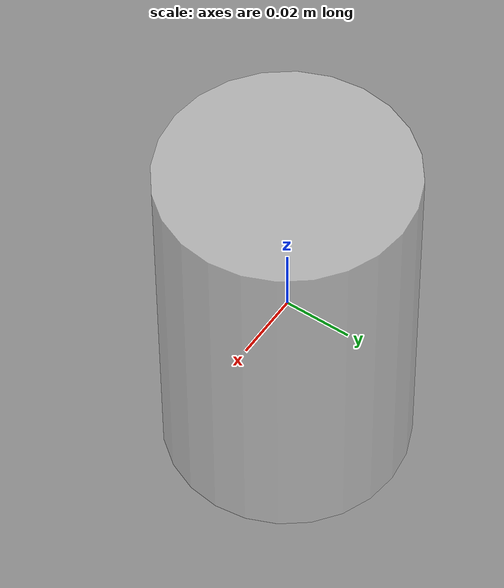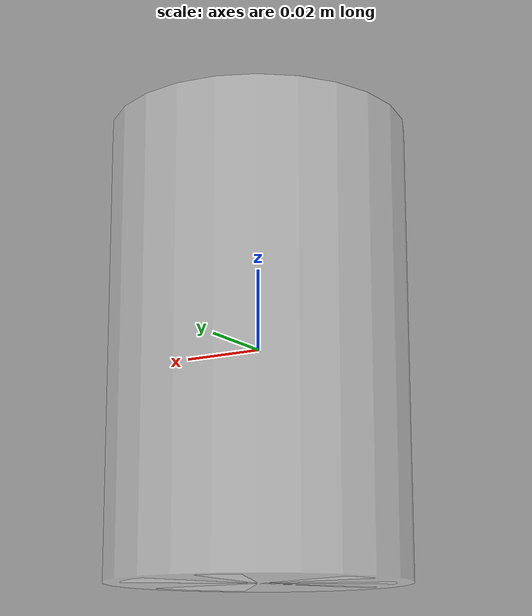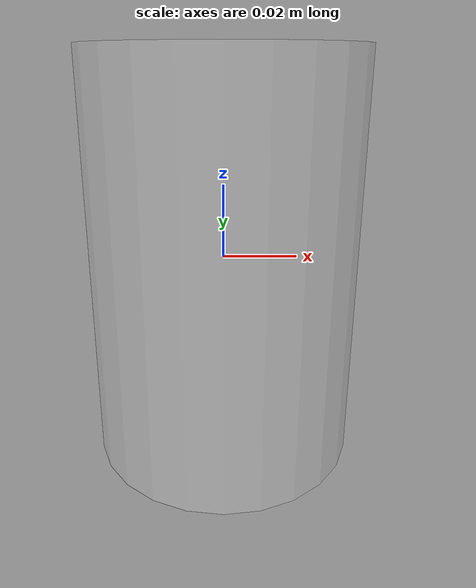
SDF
<?xml version="1.0"?>
<sdf version="1.9">
  <model name="mixing_cup_open">
    <static>false</static>
    <link name="cup_link">
      <pose>0 0 0 0 0 0</pose>
      <inertial>
        <mass>0.12</mass>
        <inertia>
          <ixx>0.00018</ixx>
          <iyy>0.00018</iyy>
          <izz>0.00011</izz>
          <ixy>0</ixy>
          <ixz>0</ixz>
          <iyz>0</iyz>
        </inertia>
      </inertial>

      <visual name="cup_body_visual">
        <geometry>
          <cylinder>
            <radius>0.036</radius>
            <length>0.110</length>
          </cylinder>
        </geometry>
        <material>
          <ambient>0.92 0.92 0.92 0.38</ambient>
          <diffuse>0.92 0.92 0.92 0.38</diffuse>
        </material>
      </visual>

      <visual name="cup_bottom_visual">
        <pose>0 0 -0.052 0 0 0</pose>
        <geometry>
          <cylinder>
            <radius>0.032</radius>
            <length>0.006</length>
          </cylinder>
        </geometry>
        <material>
          <ambient>0.92 0.92 0.92 0.85</ambient>
          <diffuse>0.92 0.92 0.92 0.85</diffuse>
        </material>
      </visual>

      <visual name="liquid_marker">
        <pose>0 0 -0.020 0 0 0</pose>
        <geometry>
          <cylinder>
            <radius>0.029</radius>
            <length>0.025</length>
          </cylinder>
        </geometry>
        <material>
          <ambient>0.2 0.45 1.0 0.45</ambient>
          <diffuse>0.2 0.45 1.0 0.45</diffuse>
        </material>
      </visual>

      <collision name="cup_grasp_collision">
        <geometry>
          <cylinder>
            <radius>0.035</radius>
            <length>0.110</length>
          </cylinder>
        </geometry>
        <surface>
          <friction>
            <ode>
              <mu>0.9</mu>
              <mu2>0.9</mu2>
            </ode>
          </friction>
          <contact>
            <collide_bitmask>0x01</collide_bitmask>
            <ode>
              <kp>80000</kp>
              <kd>8</kd>
            </ode>
          </contact>
        </surface>
      </collision>
    </link>
  </model>
</sdf>
